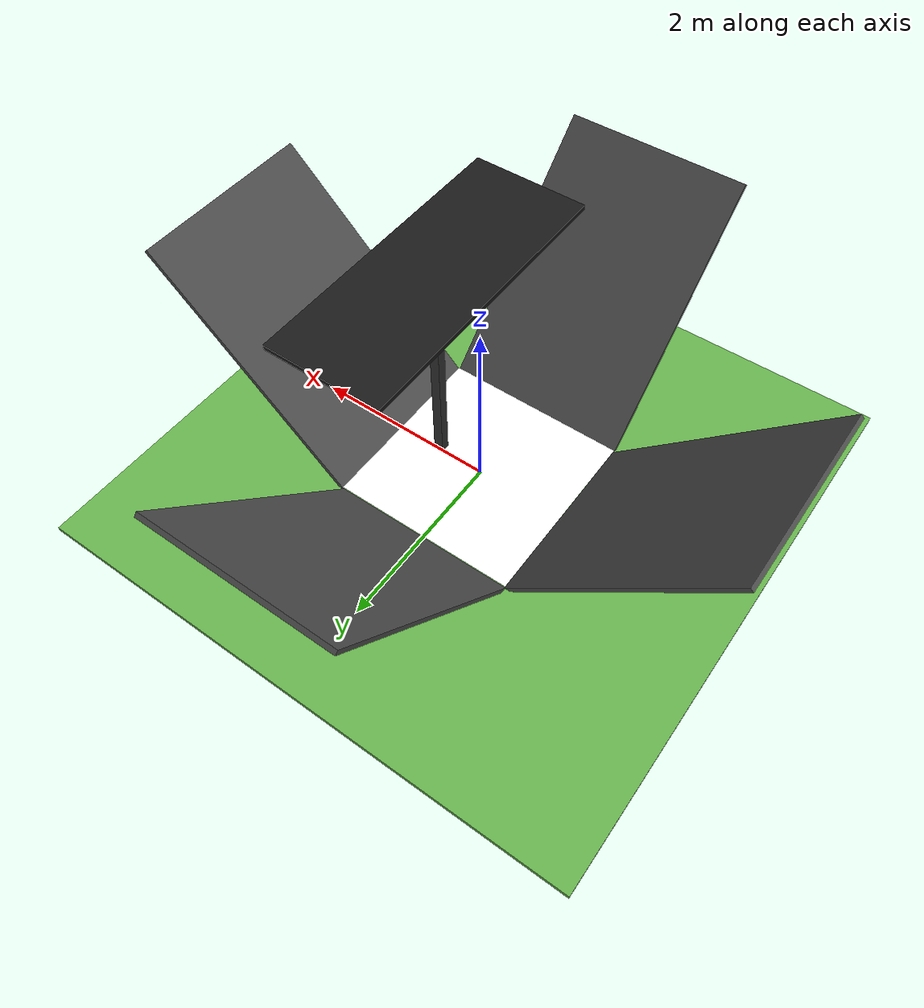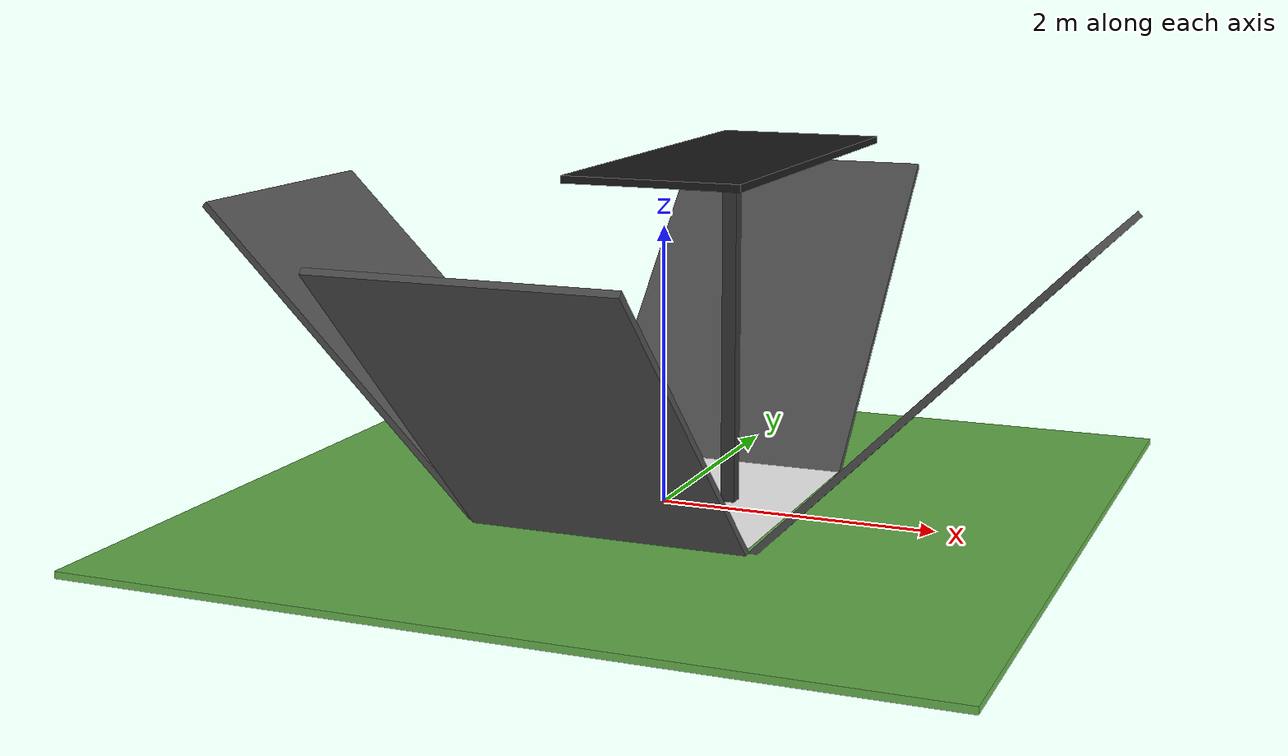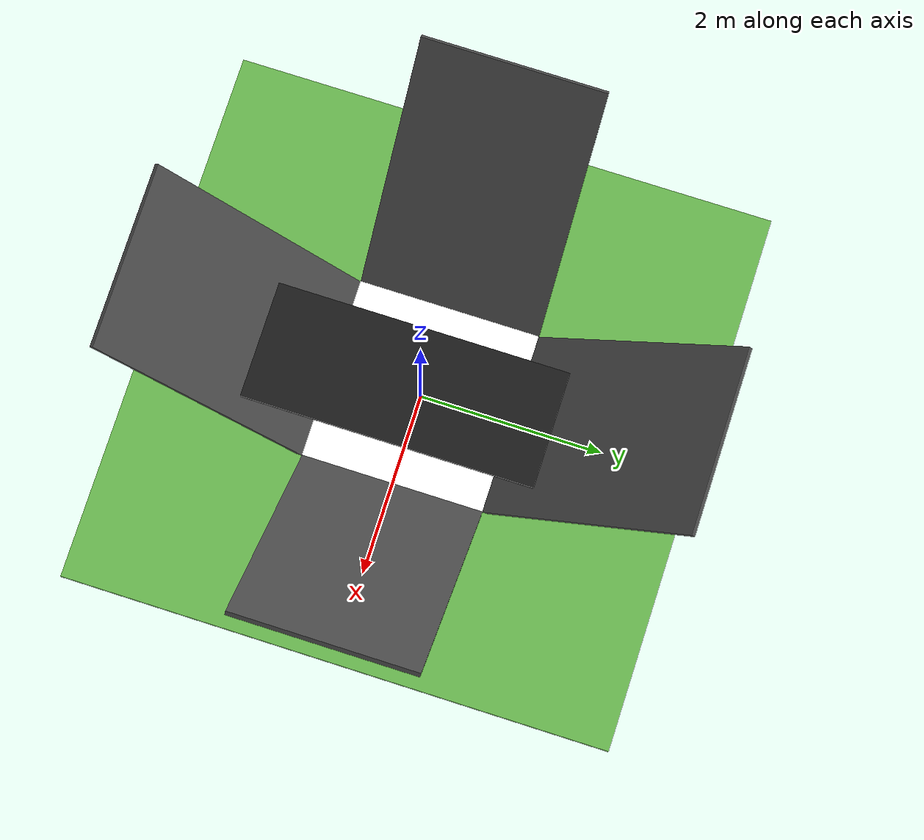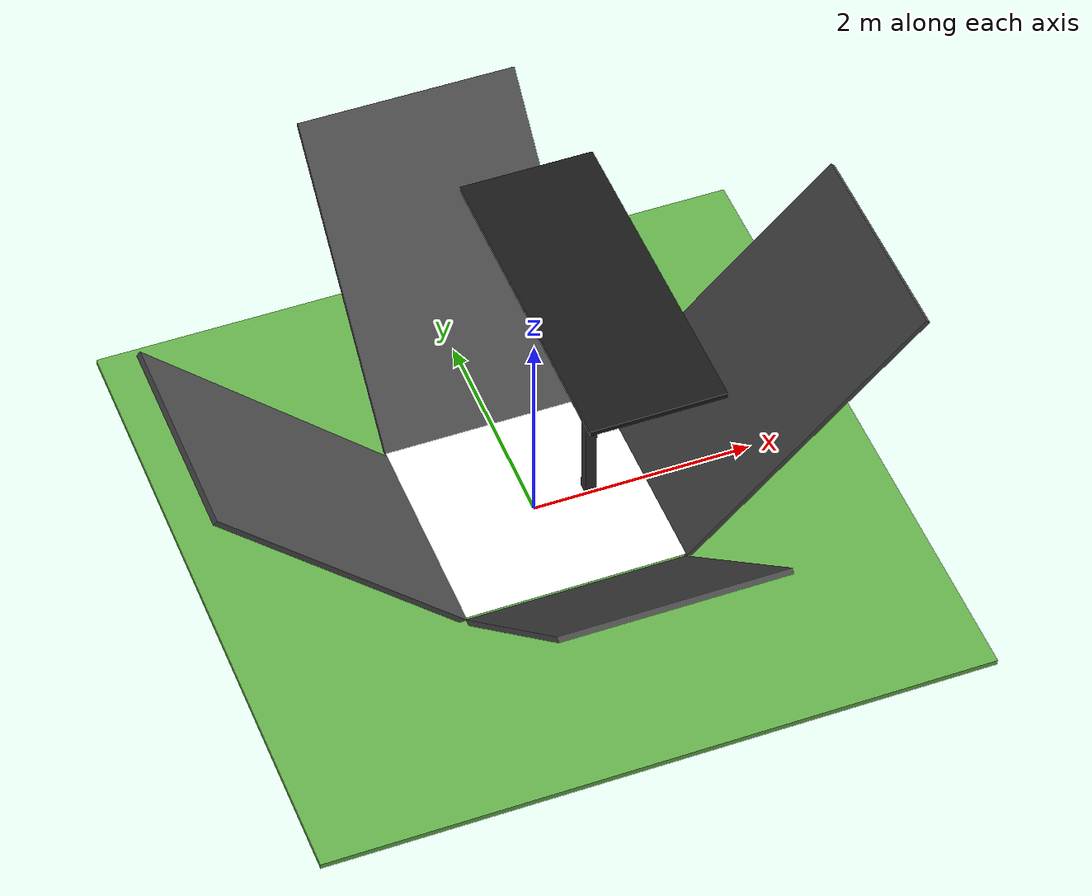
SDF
<?xml version="1.0" ?>
<sdf version="1.9">
  <model name="qr_kismigolge">
    <static>true</static>

    <link name="ground">
      <visual name="visual">
        <geometry><box><size>6 6 0.05</size></box></geometry>
        <material>
          <ambient>0.4 0.7 0.3 1</ambient>
          <diffuse>0.4 0.7 0.3 1</diffuse>
        </material>
      </visual>
    </link>

    <!-- QR kod -->
    <link name="link">
      <pose>0 0 0.06 0 0 0</pose>
      <visual name="visual">
        <geometry>
          <plane>
            <normal>0 0 1</normal>
            <size>2 2</size>
          </plane>
        </geometry>
        <material>
          <diffuse>1 1 1 1</diffuse>
          <specular>0 0 0 1</specular>
          <pbr>
            <metal>
              <albedo_map>materials/textures/qr_code.png</albedo_map>
            </metal>
          </pbr>
        </material>
      </visual>
    </link>

    <!-- QR'ın yarısını kapatan gölge plakası -->
    <link name="shadow_plate">
      <pose>0.5 0 2.5 0 0 0</pose>
      <visual name="visual">
        <geometry><box><size>1.2 3 0.05</size></box></geometry>
        <material>
          <ambient>0.1 0.1 0.1 1</ambient>
          <diffuse>0.1 0.1 0.1 1</diffuse>
        </material>
      </visual>
    </link>

    <!-- Gölge plakasının direği -->
    <link name="shadow_pole">
      <pose>0.5 0 1.2 0 0 0</pose>
      <visual name="visual">
        <geometry><box><size>0.1 0.1 2.5</size></box></geometry>
        <material>
          <ambient>0.2 0.2 0.2 1</ambient>
          <diffuse>0.2 0.2 0.2 1</diffuse>
        </material>
      </visual>
    </link>

    <link name="plate_north">
      <pose>0 2.0606 1.0606 -0.785398 0 0</pose>
      <visual name="visual">
        <geometry><box><size>2 0.05 3</size></box></geometry>
        <material><ambient>0.3 0.3 0.3 1</ambient><diffuse>0.3 0.3 0.3 1</diffuse></material>
      </visual>
    </link>
    <link name="plate_south">
      <pose>0 -2.0606 1.0606 0.785398 0 0</pose>
      <visual name="visual">
        <geometry><box><size>2 0.05 3</size></box></geometry>
        <material><ambient>0.3 0.3 0.3 1</ambient><diffuse>0.3 0.3 0.3 1</diffuse></material>
      </visual>
    </link>
    <link name="plate_east">
      <pose>2.0606 0 1.0606 0 0.785398 0</pose>
      <visual name="visual">
        <geometry><box><size>0.05 2 3</size></box></geometry>
        <material><ambient>0.3 0.3 0.3 1</ambient><diffuse>0.3 0.3 0.3 1</diffuse></material>
      </visual>
    </link>
    <link name="plate_west">
      <pose>-2.0606 0 1.0606 0 -0.785398 0</pose>
      <visual name="visual">
        <geometry><box><size>0.05 2 3</size></box></geometry>
        <material><ambient>0.3 0.3 0.3 1</ambient><diffuse>0.3 0.3 0.3 1</diffuse></material>
      </visual>
    </link>

  </model>
</sdf>
